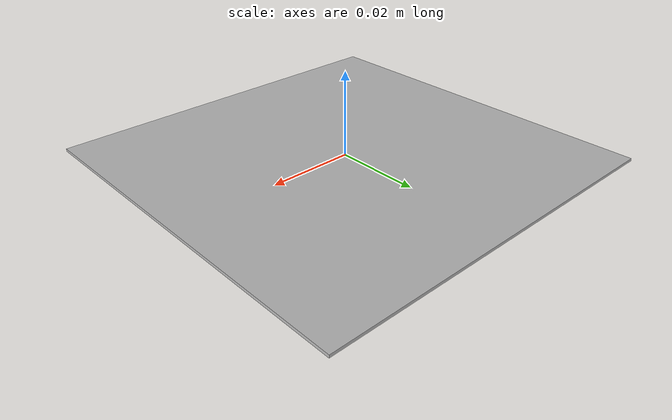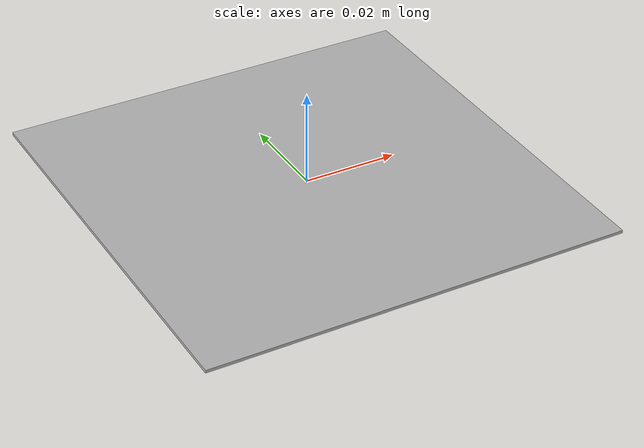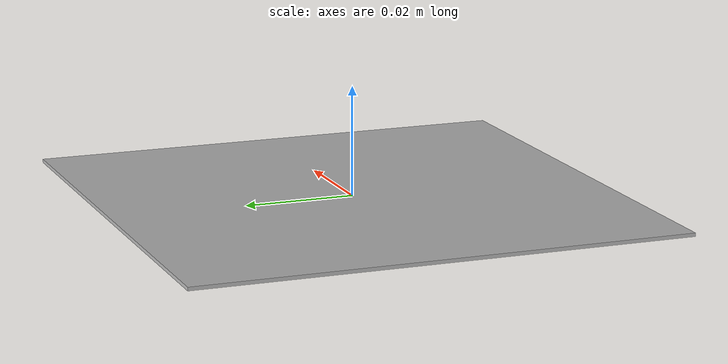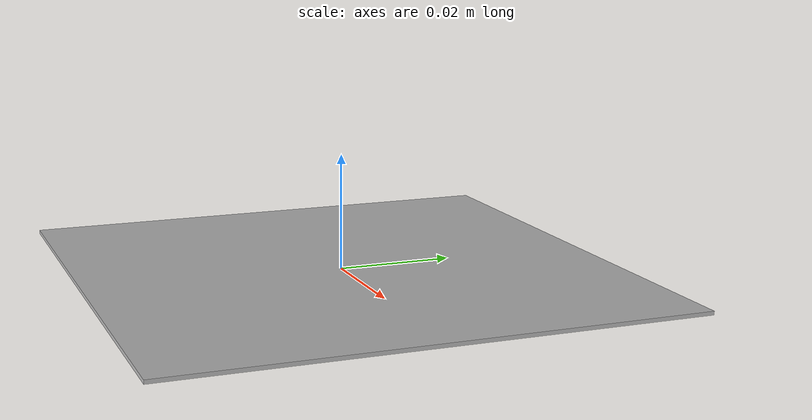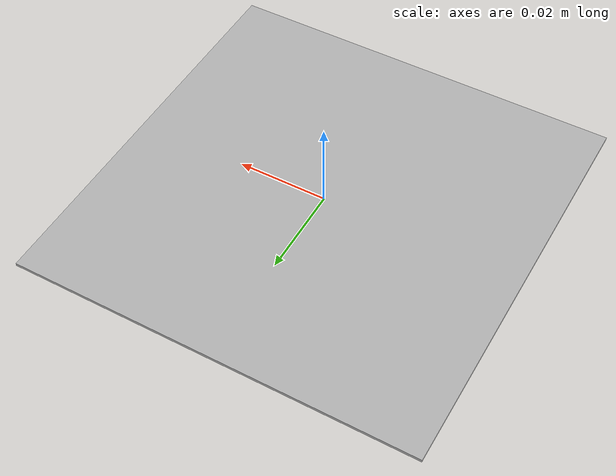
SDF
<?xml version="1.0" ?>
<sdf version="1.5">
  <model name="artag123123">
    <static>true</static>
    <link name="link">
      <collision name="collision">
        <geometry>
          <mesh>
            <uri>model://artag123123/meshes/artag123123.dae</uri>
          </mesh>
        </geometry>
      </collision>
      <visual name="visual">
        <geometry>
          <mesh>
            <uri>model://artag123123/meshes/artag123123.dae</uri>
          </mesh>
        </geometry>
      </visual>
    </link>
  </model>
</sdf>
